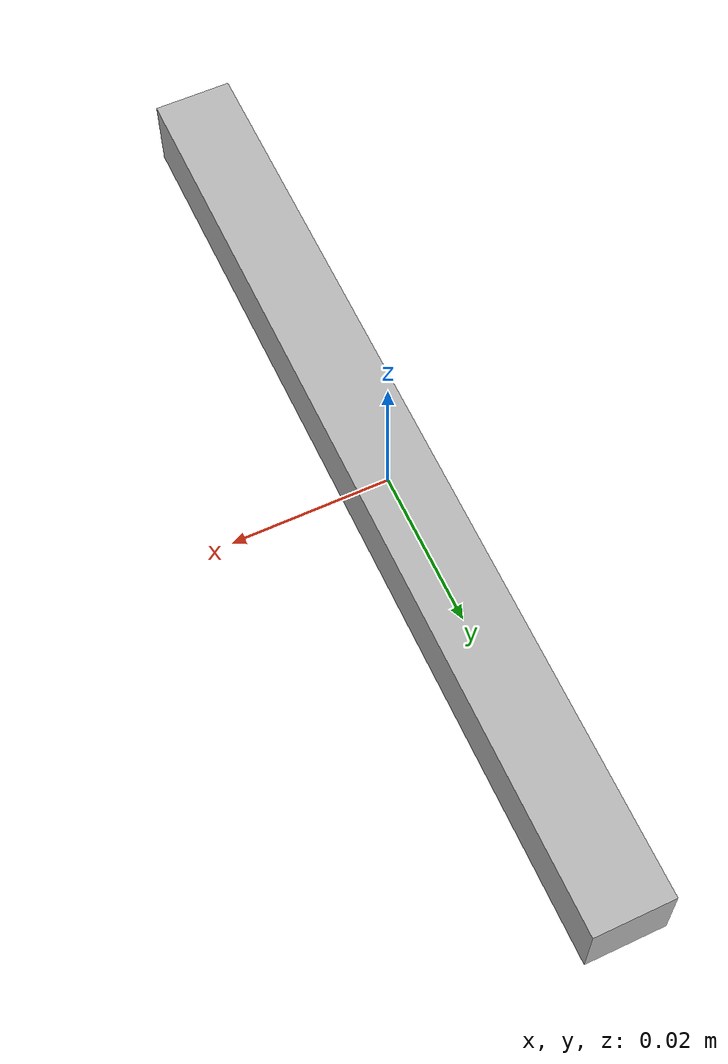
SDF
<?xml version="1.0" ?>
<sdf version="1.5">
  <model name="stereo_camera_gray">
    <link name="link">

      <inertial>
        <pose>0 0 0 0 0 0</pose>
        <mass>0.19</mass>
        <inertia>
          <ixx>4.15e-6</ixx>
          <ixy>0</ixy>
          <ixz>0</ixz>
          <iyy>2.407e-6</iyy>
          <iyz>0</iyz>
          <izz>2.407e-6</izz>
        </inertia>
      </inertial>

      <visual name="visual">
        <geometry>
          <box>
            <size>0.01 0.12 0.01</size>
          </box>
        </geometry>
      </visual>

    <sensor type="multicamera" name="stereo_camera">
      <pose frame=''>0 0 0.2 0 0 0</pose>
      <child>/multicamera_link</child>
      <parent>base_link</parent>
      <update_rate>30.0</update_rate>
      <camera name="right">
        <pose>0 0.12 0 0 0 0</pose>
        <horizontal_fov>1.5708</horizontal_fov>
        <image>
          <width>752</width>
          <height>480</height>
          <format>L8</format>
        </image>
        <clip>
          <near>0.02</near>
          <far>300</far>
        </clip>
        <noise>
          <type>gaussian</type>
          <mean>0.0</mean>
          <stddev>0.000</stddev>
        </noise>
      </camera>
      <camera name="left">
        <pose>0 0 0 0 0 0</pose>
        <horizontal_fov>1.5708</horizontal_fov>
        <image>
          <width>752</width>
          <height>480</height>
          <format>L8</format>
        </image>
        <clip>
          <near>0.02</near>
          <far>300</far>
        </clip>
        <noise>
          <type>gaussian</type>
          <mean>0.0</mean>
          <stddev>0.000</stddev>
        </noise>
      </camera>
      <plugin name="stereo_camera_controller" filename="libgazebo_ros_multicamera.so">
        <alwaysOn>true</alwaysOn>
        <updateRate>0.0</updateRate>
        <cameraName>gi/simulation</cameraName>
        <imageTopicName>image_raw</imageTopicName>
        <cameraInfoTopicName>camera_info</cameraInfoTopicName>
        <frameName>left_camera_optical_frame</frameName>
        <hackBaseline>0.05</hackBaseline>
        <Fx>376.0</Fx>
        <Fy>376.0</Fy>
        <Cx>376.0</Cx>
        <Cy>240.0</Cy>
        <distortionK1>0.0</distortionK1>
        <distortionK2>0.0</distortionK2>
        <distortionK3>0.0</distortionK3>
        <distortionT1>0.0</distortionT1>
        <distortionT2>0.0</distortionT2>
      </plugin>
    </sensor>
    </link>
  </model>
</sdf>

<!-- vim: set et fenc= ff=unix sts=0 sw=2 ts=2 : -->
